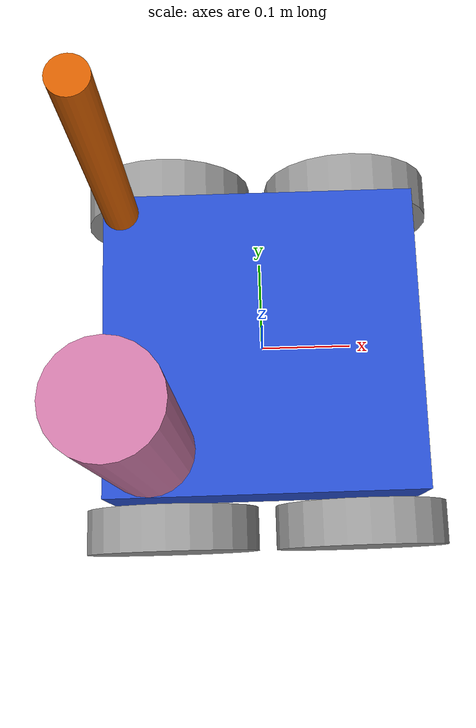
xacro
<?xml version='1.0'?>

<robot name="dug" xmlns:xacro="http://www.ros.org/wiki/xacro">

  <!--Macros-->
  <xacro:property name="chassis_height" value="0.1"/>
  <xacro:property name="chassis_width" value="0.34"/>
  <xacro:property name="chassis_length" value="0.35"/>

  <xacro:property name="wheel_height" value="-0.07"/>
  <xacro:property name="wheel_y" value="0.2"/>
  <xacro:property name="wheel_x" value="0.11"/>
  <xacro:property name="wheel_inertia_ixx" value="0.025"/>
  <xacro:property name="wheel_inertia_iyy" value="0.025"/>
  <xacro:property name="wheel_inertia_izz" value="0.025"/>

  <xacro:property name="slrs_one_radius" value="0.02"/>
  <xacro:property name="slrs_two_radius" value="0.05"/>
  <xacro:property name="slrs_pole_height" value="0.3"/>

  <!--End Macros-->

  <!--VISUAL AND INERTIAL-->

  <link name='chassis'>

    <inertial>
      <mass value="20.0"/>
      <origin xyz="0.0 0.0 0.0" rpy="0.0 0.0 0.0"/>
      <inertia
          ixx="0.4" ixy="0" ixz="0"
          iyy="0.2" iyz="0"
          izz="0.15"
      />
    </inertial>
    <collision name='collision'>
      <geometry>
        <box size="${chassis_length} ${chassis_width} ${chassis_height}"/>
      </geometry>
    </collision>
    <visual name='chassis_visual'>
      <origin xyz="0 0 0" rpy="0 0 0"/>
      <geometry>
        <box size="${chassis_length} ${chassis_width} ${chassis_height}"/>
      </geometry>
    </visual>
  </link>

  <link name="left_front_wheel">
    <collision name="collision">
      <origin xyz="0 0 0" rpy="0 1.5707 1.5707"/>
      <geometry>
        <cylinder radius="0.1" length="0.05"/>
      </geometry>
    </collision>
    <visual name="left_front_wheel_visual">
      <origin xyz="0 0 0" rpy="0 1.5707 1.5707"/>
      <geometry>
        <cylinder radius="0.1" length="0.05"/>
      </geometry>
    </visual>
    <inertial>
      <origin xyz="0 0 0" rpy="0 1.5707 1.5707"/>
      <mass value="5"/>
      <cylinder_inertia m="5" r="0.1" h="0.05"/>
      <inertia
        ixx="${wheel_inertia_ixx}" ixy="0.0" ixz="0.0"
        iyy="${wheel_inertia_iyy}" iyz="0.0"
        izz="${wheel_inertia_izz}"/>
    </inertial>
  </link>

  <link name="left_rear_wheel">
    <collision name="collision">
      <origin xyz="0 0 0" rpy="0 1.5707 1.5707"/>
      <geometry>
        <cylinder radius="0.1" length="0.05"/>
      </geometry>
    </collision>
    <visual name="left_rear_wheel_visual">
      <origin xyz="0 0 0" rpy="0 1.5707 1.5707"/>
      <geometry>
        <cylinder radius="0.1" length="0.05"/>
      </geometry>
    </visual>
    <inertial>
      <origin xyz="0 0 0" rpy="0 1.5707 1.5707"/>
      <mass value="5"/>
      <cylinder_inertia m="5" r="0.1" h="0.05"/>
      <inertia
        ixx="${wheel_inertia_ixx}" ixy="0.0" ixz="0.0"
        iyy="${wheel_inertia_iyy}" iyz="0.0"
        izz="${wheel_inertia_izz}"/>
    </inertial>
  </link>

  <link name="right_front_wheel">
    <collision name="collision">
      <origin xyz="0 0 0" rpy="0 1.5707 1.5707"/>
      <geometry>
        <cylinder radius="0.1" length="0.05"/>
      </geometry>
    </collision>
    <visual name="right_front_wheel_visual">
      <origin xyz="0 0 0" rpy="0 1.5707 1.5707"/>
      <geometry>
        <cylinder radius="0.1" length="0.05"/>
      </geometry>
    </visual>
    <inertial>
      <origin xyz="0 0 0" rpy="0 1.5707 1.5707"/>
      <mass value="5"/>
      <cylinder_inertia m="5" r="0.1" h="0.05"/>
      <inertia
        ixx="${wheel_inertia_ixx}" ixy="0.0" ixz="0.0"
        iyy="${wheel_inertia_iyy}" iyz="0.0"
        izz="${wheel_inertia_izz}"/>
    </inertial>
  </link>

  <link name="right_rear_wheel">
    <collision name="collision">
      <origin xyz="0 0 0" rpy="0 1.5707 1.5707"/>
      <geometry>
        <cylinder radius="0.1" length="0.05"/>
      </geometry>
    </collision>
    <visual name="right_rear_wheel_visual">
      <origin xyz="0 0 0" rpy="0 1.5707 1.5707"/>
      <geometry>
        <cylinder radius="0.1" length="0.05"/>
      </geometry>
    </visual>
    <inertial>
      <origin xyz="0 0 0" rpy="0 1.5707 1.5707"/>
      <mass value="5"/>
      <cylinder_inertia m="5" r="0.1" h="0.05"/>
      <inertia
        ixx="${wheel_inertia_ixx}" ixy="0.0" ixz="0.0"
        iyy="${wheel_inertia_iyy}" iyz="0.0"
        izz="${wheel_inertia_izz}"/>
    </inertial>
  </link>

  <!--SLRS POLES-->

  <link name="slrs_pole_one">
    <collision name="collision">
      <origin xyz="0 0 0" rpy="0 0 0"/>
      <geometry>
        <cylinder radius="${slrs_one_radius}" length="${slrs_pole_height}"/>
      </geometry>
    </collision>
    <visual name="slrs_one_visual">
      <origin xyz="0 0 0" rpy="0 0 0"/>
      <geometry>
        <cylinder radius="${slrs_one_radius}" length="${slrs_pole_height}"/>
      </geometry>
    </visual>
    <inertial>
      <origin xyz="0 0 0" rpy="0 0 0"/>
      <mass value="5"/>
      <cylinder_inertia m="5" r="0.1" h="0.05"/>
      <inertia
        ixx="${wheel_inertia_ixx}" ixy="0.0" ixz="0.0"
        iyy="${wheel_inertia_iyy}" iyz="0.0"
        izz="${wheel_inertia_izz}"/>
    </inertial>
  </link>

  <link name="slrs_pole_two">
    <collision name="collision">
      <origin xyz="0 0 0" rpy="0 0 0"/>
      <geometry>
        <cylinder radius="${slrs_two_radius}" length="${slrs_pole_height}"/>
      </geometry>
    </collision>
    <visual name="slrs_two_visual">
      <origin xyz="0 0 0" rpy="0 0 0"/>
      <geometry>
        <cylinder radius="${slrs_two_radius}" length="${slrs_pole_height}"/>
      </geometry>
    </visual>
    <inertial>
      <origin xyz="0 0 0" rpy="0 0 0"/>
      <mass value="5"/>
      <cylinder_inertia m="5" r="0.1" h="0.05"/>
      <inertia
        ixx="${wheel_inertia_ixx}" ixy="0.0" ixz="0.0"
        iyy="${wheel_inertia_iyy}" iyz="0.0"
        izz="${wheel_inertia_izz}"/>
    </inertial>
  </link>

  <!--JOINTS, TRANSMISSIONS AND GAZEBO PLUGINS-->

  <joint type="continuous" name="left_front_wheel_joint">
    <origin  xyz="${wheel_x} ${wheel_y} ${wheel_height}" rpy="0 0 0"/>
    <child link="left_front_wheel"/>
    <parent link="chassis"/>
    <axis xyz="0 1 0" rpy="0 0 0"/>
    <limit effort="100" velocity="100"/>
    <joint_properties damping="0.0" friction="0.0"/>
  </joint>
  <transmission name="left_front_wheel_transm">
    <type>transmission_interface/SimpleTransmission</type>
    <joint name="left_front_wheel_joint">
      <hardwareInterface>hardware_interface/VelocityJointInterface</hardwareInterface>
    </joint>
    <actuator name="left_front_wheel_motor">
      <hardwareInterface>hardware_interface/VelocityJointInterface</hardwareInterface>
   </actuator>
  </transmission>

  <joint type="continuous" name="left_rear_wheel_joint">
    <origin xyz="-${wheel_x} ${wheel_y} ${wheel_height}" rpy="0 0 0"/>
    <child link="left_rear_wheel"/>
    <parent link="chassis"/>
    <axis xyz="0 1 0" rpy="0 0 0"/>
    <limit effort="100" velocity="100"/>
    <joint_properties damping="0.0" friction="0.0"/>
  </joint>
  <transmission name="left_rear_wheel_transm">
    <type>transmission_interface/SimpleTransmission</type>
    <joint name="left_rear_wheel_joint">
      <hardwareInterface>hardware_interface/VelocityJointInterface</hardwareInterface>
    </joint>
    <actuator name="left_rear_wheel_motor">
      <hardwareInterface>hardware_interface/VelocityJointInterface</hardwareInterface>
   </actuator>
  </transmission>

  <joint type="continuous" name="right_front_wheel_joint">
    <origin xyz="${wheel_x} -${wheel_y} ${wheel_height}" rpy="0 0 0"/>
    <child link="right_front_wheel"/>
    <parent link="chassis"/>
    <axis xyz="0 1 0" rpy="0 0 0"/>
    <limit effort="100" velocity="100"/>
    <joint_properties damping="0.0" friction="0.0"/>
  </joint>
  <transmission name="right_front_wheel_transm">
    <type>transmission_interface/SimpleTransmission</type>
    <joint name="right_front_wheel_joint">
      <hardwareInterface>hardware_interface/VelocityJointInterface</hardwareInterface>
    </joint>
    <actuator name="right_front_wheel_motor">
      <hardwareInterface>hardware_interface/VelocityJointInterface</hardwareInterface>
   </actuator>
  </transmission>

  <joint type="continuous" name="right_rear_wheel_joint">
    <origin xyz="-${wheel_x} -${wheel_y} ${wheel_height}" rpy="0 0 0"/>
    <child link="right_rear_wheel"/>
    <parent link="chassis"/>
    <axis xyz="0 1 0" rpy="0 0 0"/>
    <limit effort="100" velocity="100"/>
    <joint_properties damping="0.0" friction="0.0"/>
  </joint>
  <transmission name="right_rear_wheel_transm">
    <type>transmission_interface/SimpleTransmission</type>
    <joint name="right_rear_wheel_joint">
      <hardwareInterface>hardware_interface/VelocityJointInterface</hardwareInterface>
    </joint>
    <actuator name="right_rear_wheel_motor">
      <hardwareInterface>hardware_interface/VelocityJointInterface</hardwareInterface>
   </actuator>
  </transmission>

  <xacro:property name="chassis_height_half" value="${chassis_height / 2}"/>
  <joint type="fixed" name="slrs_pole_one_fixed">
    <origin xyz="-${chassis_length / 2 - slrs_one_radius}
                ${chassis_width / 2 - slrs_one_radius}
                ${slrs_pole_height / 2 + chassis_height_half}"
            rpy="0 0 0"/>
    <child link="slrs_pole_one"/>
    <parent link="chassis"/>
  </joint>

  <joint type="fixed" name="slrs_pole_two_fixed">
    <origin xyz="-${chassis_length / 2 - slrs_two_radius}
                -${chassis_width / 2 - slrs_two_radius}
                ${slrs_pole_height / 2 + chassis_height_half}"
            rpy="0 0 0"/>
    <child link="slrs_pole_two"/>
    <parent link="chassis"/>
  </joint>

  <gazebo reference="chassis">
    <material>Gazebo/Blue</material>
  </gazebo>
  <gazebo reference="left_front_wheel">
    <material>Gazebo/Grey</material>
  </gazebo>
  <gazebo reference="right_front_wheel">
    <material>Gazebo/Grey</material>
  </gazebo>
  <gazebo reference="left_rear_wheel">
    <material>Gazebo/Grey</material>
  </gazebo>
  <gazebo reference="right_rear_wheel">
    <material>Gazebo/Grey</material>
  </gazebo>

  <gazebo>
    <plugin name="gazebo_ros_control" filename="libgazebo_ros_control.so">
      <robotNamespace>/dug</robotNamespace>
    </plugin>
  </gazebo>

</robot>
